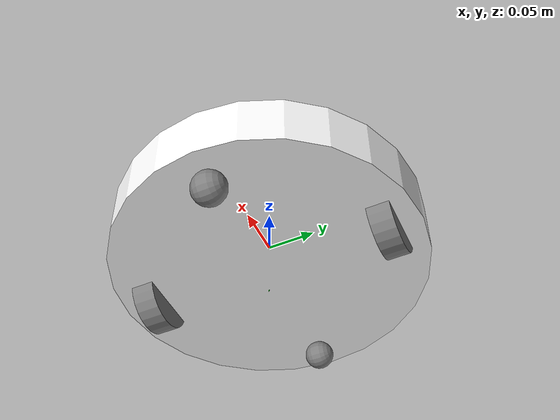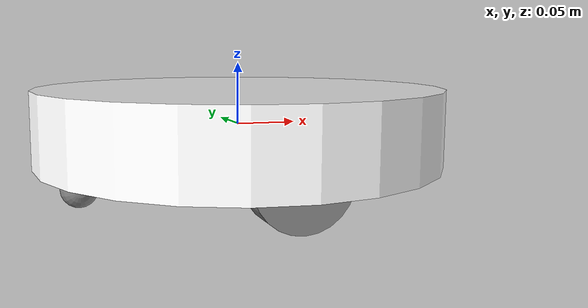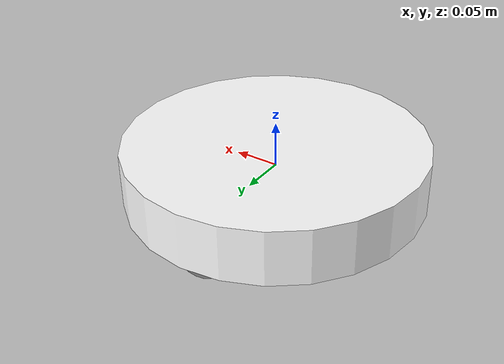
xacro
<?xml version="1.0"?>
<!-- Called by mockbotc1_description.launch.py -->
<!-- Derived from linorobot2 2wd.urdf.xacro -->
<robot name="mockbotc1" xmlns:xacro="http://ros.org/wiki/xacro">

  <xacro:include filename="$(find mockbotc1_description)/urdf/common_properties.urdf.xacro" />
  <xacro:include filename="$(find mockbotc1_description)/urdf/create_base.urdf.xacro" />

  <!-- Test sensors_shelf.urdf.xacro -->

  <xacro:create_base wheel_separation="0.26" base_diameter="${33.02*cm2m}" base_length="${6.11632*cm2m}"/>

  <!-- TB circles xacros -->

</robot>

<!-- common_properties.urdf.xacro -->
<!-- Based on Turtlebot & Turtlebot4 - Various useful macros called in mockbotc1.urdf.xacro -->
<robot name="xacro_properties" xmlns:xacro="http://ros.org/wiki/xacro">

  <xacro:macro name="inertial_cuboid_with_pose" params="mass x y z *origin">
    <inertial>
      <mass value="${mass}" />
      <xacro:insert_block name="origin"/>
      <inertia ixx="${(1/12) * mass * (y*y + z*z)}" ixy="0.0" ixz="0.0"
        iyy="${(1/12) * mass * (x*x + z*z)}" iyz="0.0"
        izz="${(1/12) * mass * (x*x + y*y)}" />
    </inertial>
  </xacro:macro>

  <xacro:macro name="inertial_cuboid" params="mass x y z">
    <xacro:inertial_cuboid_with_pose mass="${mass}" x="${x}" y="${y}" z="${z}">
      <origin xyz="0 0 0" />
    </xacro:inertial_cuboid_with_pose>
  </xacro:macro>

  <xacro:macro name="inertial_cylinder_with_pose" params="mass radius length *origin">
    <inertial>
      <xacro:insert_block name="origin"/>
      <mass value="${mass}" />
      <inertia ixx="${(1/12) * mass * (3*radius*radius + length*length)}" ixy="0.0" ixz="0.0"
        iyy="${(1/12) * mass * (3*radius*radius + length*length)}" iyz="0.0"
        izz="${(1/2) * mass * (radius*radius)}" />
    </inertial>
  </xacro:macro>

  <xacro:macro name="inertial_cylinder" params="mass radius length">
    <xacro:inertial_cylinder_with_pose mass="${mass}" radius="${radius}" length="${length}">
      <origin xyz="0 0 0" />
    </xacro:inertial_cylinder_with_pose>
  </xacro:macro>

  <xacro:macro name="inertial_sphere" params="mass radius">
    <inertial>
      <mass value="${mass}" />
      <inertia ixx="${(2/5) * mass * radius * radius}" ixy="0.0" ixz="0.0"
	             iyy="${(2/5) * mass * radius * radius}" iyz="0.0"
	             izz="${(2/5) * mass * radius * radius}" />
    </inertial>
  </xacro:macro>

  <xacro:macro name="inertial_dummy">
    <xacro:inertial_cuboid mass="0.01" x="0.01" y="0.01" z="0.01"/>
  </xacro:macro>

<!-- Conversion macros -->
  <xacro:property name="cm2m"    value="${1/100.0}"/>
  <xacro:property name="mm2m"    value="${1/1000.0}"/>
  <xacro:property name="in2m"    value="0.0254"/>
  <xacro:property name="deg2rad" value="${pi/180.0}"/>

<!-- Material colors -->
<!-- From Turtlebot -->
    <xacro:property name="material_white">
    <material name="white">
      <color rgba="1 1 1 1"/>
    </material>
  </xacro:property>
  <xacro:property name="material_black">
    <material name="black">
      <color rgba="0.1 0.1 0.1 1"/>
    </material>
  </xacro:property>
  <xacro:property name="material_grey">
    <material name="grey">
      <color rgba="0.5 0.5 0.5 1"/>
    </material>
  </xacro:property>
  <xacro:property name="material_light_grey">
    <material name="light_grey">
      <color rgba="0.6 0.6 0.6 1"/>
    </material>
  </xacro:property>
  <xacro:property name="material_dark_grey">
    <material name="dark_grey">
      <color rgba="0.3 0.3 0.3 1"/>
    </material>
  </xacro:property>
  <xacro:property name="material_black">
    <material name="black">
      <color rgba="0.1 0.1 0.1 1"/>
    </material>
  </xacro:property>
  <xacro:property name="material_red">
    <material name="red">
      <color rgba="1 0 0 1"/>
    </material>
  </xacro:property>
  <xacro:property name="material_dark_blue">
    <material name="dark_blue">
      <color rgba="0 0 255 1"/>
    </material>
  </xacro:property>

  <!-- Material macros -->
  <xacro:macro name="material_black">
    <visual>
      <material>
        <diffuse>0 0 0 1</diffuse>
        <specular>${80/255} ${80/255} ${80/255} 1</specular>
        <emissive>0 0 0 1</emissive>
      </material>
    </visual>
  </xacro:macro>

  <xacro:macro name="material_darkgray">
    <visual>
      <material>
        <diffuse>${3/255} ${3/255} ${3/255} 1</diffuse>
        <specular>0 0 0 1</specular>
        <emissive>0 0 0 1</emissive>
      </material>
    </visual>
  </xacro:macro>

</robot>

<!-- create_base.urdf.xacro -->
<robot xmlns:xacro="http://ros.org/wiki/xacro">
  <xacro:property name="PI" value="3.1415926535897931" />

  <material name="black">
    <color rgba="0 0 0 1"/>
  </material>

  <material name="white">
    <color rgba="1 1 1 1"/>
  </material>

  <material name="grey">
    <color rgba="0.5 0.5 0.5 1"/>
  </material>

  <material name="green">
    <color rgba="0.0 1.0 0.0 1.0"/>
  </material>

  <xacro:macro name="create_wheel" params="prefix y_offset wheel_radius wheel_width">
    <link name="${prefix}_wheel_link">
    <inertial>
      <origin xyz="0 0 0" />
      <mass value="0.01" />
      <inertia ixx="0.001" ixy="0.0" ixz="0.0" iyy="0.001" iyz="0.0" izz="0.001" />
    </inertial>

    <visual>
      <origin xyz="0 0 0" rpy="0 ${PI/2} ${PI/2}" />
      <geometry>
        <cylinder radius="${wheel_radius}" length="${wheel_width}" />
      </geometry>
      <material name="grey"/>
    </visual>

    <collision>
      <origin xyz="0 0 0" rpy="0 ${PI/2} ${PI/2}" />
      <geometry>
        <cylinder radius="${wheel_radius}" length="${wheel_width}" />
      </geometry>
    </collision>
    </link>

   <joint name="${prefix}_wheel_joint" type="continuous">
      <origin xyz="0 ${y_offset} ${-(footprint_to_base_zoffset-wheel_radius-wheel_zoffset)}" rpy="0 0 0" />
      <parent link="base_link" />
      <child link="${prefix}_wheel_link" />
      <axis xyz="0 1 0" />
    </joint>
  </xacro:macro>

  <xacro:macro name="create_base" params="diffdrive_update_rate:=40 wheel_separation wheel_radius:=0.036 wheel_width:=0.024 wheel_zoffset:=0.005 wheel_torque:=1.0 wheel_accel:=1.8 mass_kg:=3.5 base_diameter base_length">

  <xacro:property name="footprint_to_base_zoffset" value="${(base_length/2+wheel_radius-wheel_zoffset)}"/>

    <!-- Robot Footprint -->
    <!-- Follows syntax of Nav2 Sambot -->
    <link name="base_footprint">
     <visual>
       <origin xyz="0 0 0" rpy="0 0 0" />
       <geometry>
         <box size="0.001 0.001 0.001" />
       </geometry>
       <material name="green" />
     </visual>

     <collision>
       <origin xyz="0.0 0.0 ${-(0.045)}" rpy="0 0 0" />
       <geometry>
         <box size="0.001 0.001 0.001" />
       </geometry>
      </collision>
    </link>

    <!-- Revised base_link & base_footprint -->
    <joint name="base_footprint_joint" type="fixed">
      <origin xyz="0.0 0.0 ${-(footprint_to_base_zoffset)}" rpy="0 0 0" />
      <parent link="base_link" />
      <child link="base_footprint" />
    </joint>

    <!-- Robot Link -->
    <!-- Revised origin to 0 0 0 -->
    <link name="base_link">
     <inertial>
       <mass value="2" />
       <origin xyz="0.0 0.0 0.0" />
       <inertia ixx="0.01" ixy="0.0" ixz="0.0" iyy="0.01" iyz="0.0" izz="0.5" />
     </inertial>

     <visual>
      <origin xyz=" 0 0 0" rpy="0 0 0" />
      <geometry>
        <cylinder radius="${base_diameter/2}" length="${base_length}"/>
      </geometry>
      <material name="white"/>
     </visual>

     <collision>
      <origin xyz="0.0 0.0 0.0" rpy="0 0 0" />
      <geometry>
        <cylinder length="0.0611632" radius="0.16495" />
      </geometry>
     </collision>
    </link>

    <link name="wall_sensor_link">
    <inertial>
      <mass value="0.01" />
      <origin xyz="0 0 0" />
      <inertia ixx="0.001" ixy="0.0" ixz="0.0" iyy="0.001" iyz="0.0" izz="0.001" />
    </inertial>
    </link>

    <link name="left_cliff_sensor_link">
    <inertial>
      <mass value="0.01" />
      <origin xyz="0 0 0" />
      <inertia ixx="0.001" ixy="0.0" ixz="0.0" iyy="0.001" iyz="0.0" izz="0.001" />
    </inertial>
    </link>

    <link name="right_cliff_sensor_link">
    <inertial>
      <mass value="0.01" />
      <origin xyz="0 0 0" />
      <inertia ixx="0.001" ixy="0.0" ixz="0.0" iyy="0.001" iyz="0.0" izz="0.001" />
    </inertial>
    </link>

    <link name="leftfront_cliff_sensor_link">
    <inertial>
      <mass value="0.01" />
      <origin xyz="0 0 0" />
      <inertia ixx="1.0" ixy="0.0" ixz="0.0" iyy="0.01" iyz="0.0" izz="0.01" />
    </inertial>
    </link>

    <link name="rightfront_cliff_sensor_link">
    <inertial>
      <mass value="0.01" />
      <origin xyz="0 0 0" />
      <inertia ixx="0.001" ixy="0.0" ixz="0.0" iyy="0.001" iyz="0.0" izz="0.001" />
    </inertial>
    </link>

    <joint name="base_wall_sensor_joint" type="fixed">
      <origin xyz="0.09 -0.120 0.042" rpy="0 0 -1.0" />
      <parent link="base_link" />
      <child link="wall_sensor_link" />
    </joint>

    <joint name="base_left_cliff_sensor_joint" type="fixed">
      <origin xyz="0.07 0.14 0.01" rpy="0 ${PI/2} 0" />
      <parent link="base_link" />
      <child link="left_cliff_sensor_link" />
    </joint>

    <joint name="base_right_cliff_sensor_joint" type="fixed">
      <origin xyz="0.07 -0.14 0.01" rpy="0 ${PI/2} 0" />
      <parent link="base_link" />
      <child link="right_cliff_sensor_link" />
    </joint>

    <joint name="base_leftfront_cliff_sensor_joint" type="fixed">
      <origin xyz="0.15 0.04 0.01" rpy="0 ${PI/2} 0" />
      <parent link="base_link" />
      <child link="leftfront_cliff_sensor_link" />
    </joint>

    <joint name="base_rightfront_cliff_sensor_joint" type="fixed">
      <origin xyz="0.15 -0.04 0.01" rpy="0 ${PI/2} 0" />
      <parent link="base_link" />
      <child link="rightfront_cliff_sensor_link" />
    </joint>

    <xacro:create_wheel prefix="left" y_offset="${wheel_separation / 2}" wheel_radius="${wheel_radius}" wheel_width="${wheel_width}"/>
    <xacro:create_wheel prefix="right" y_offset="${wheel_separation / -2}" wheel_radius="${wheel_radius}" wheel_width="${wheel_width}"/>

    <link name="rear_wheel_link">
    <inertial>
      <origin xyz="0 0 0"/>
      <mass value="0.001" />
      <inertia ixx="0.0001" ixy="0.0" ixz="0.0"
        iyy="0.0001" iyz="0.0" izz="0.0001" />
    </inertial>

    <visual>
      <origin xyz="0 0 0" rpy="0 ${PI/2} ${PI/2}"/>
      <geometry>
        <sphere radius="0.015" />
      </geometry>
      <material name="grey"/>
    </visual>

    <collision>
      <origin xyz="0 0 0" rpy="0 ${PI/2} ${PI/2}" />
      <geometry>
        <sphere radius="0.015" />
      </geometry>
    </collision>
    </link>
    <joint name="rear_castor_joint" type="fixed">
      <origin xyz="-0.13 0 ${-(footprint_to_base_zoffset-0.015)}" rpy="0 0 0"/>
      <parent link="base_link"/>
      <child link="rear_wheel_link"/>
      <axis xyz="0 1 0"/>
    </joint>

    <link name="front_wheel_link">
    <inertial>
      <origin xyz="0 0 0" />
      <mass value="0.01" />
      <inertia ixx="0.001" ixy="0.0" ixz="0.0" iyy="0.001" iyz="0.0" izz="0.001" />
    </inertial>

    <visual>
      <origin xyz="0 0 0" rpy="0 ${PI/2} ${PI/2}" />
      <geometry>
        <sphere radius="0.018" />
      </geometry>
      <material name="grey"/>
    </visual>

    <collision>
      <origin xyz="0 0 0" rpy="0 ${PI/2} ${PI/2}" />
      <geometry>
        <sphere radius="0.018" />
      </geometry>
    </collision>
    </link>

    <!-- fixed because there's no transmission -->
    <joint name="front_castor_joint" type="fixed">
      <origin xyz="0.13 0 ${-(footprint_to_base_zoffset-0.018)}" rpy="0 0 0" />
      <parent link="base_link" />
      <child link="front_wheel_link" />
      <axis xyz="0 1 0" />
    </joint>

    <!-- Gyro Sensor -->

    <!-- Simulation Sensors -->
  </xacro:macro>
</robot>
